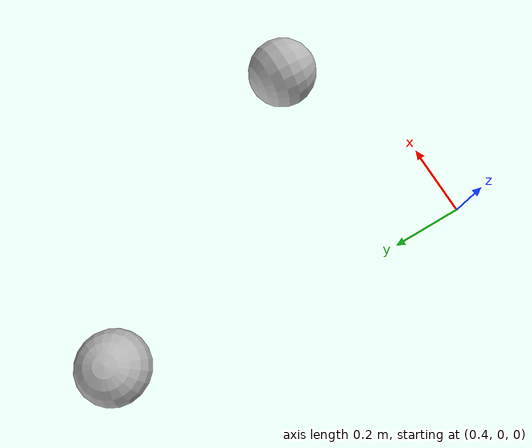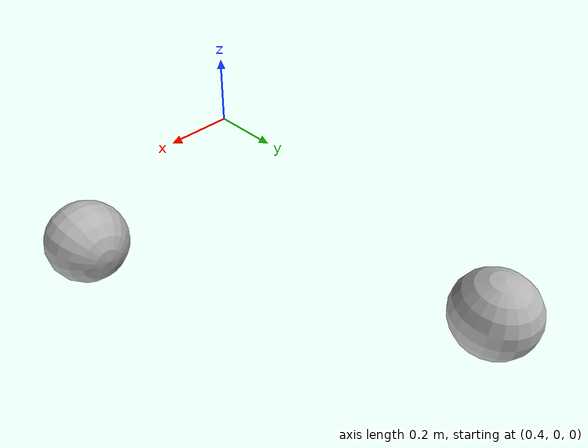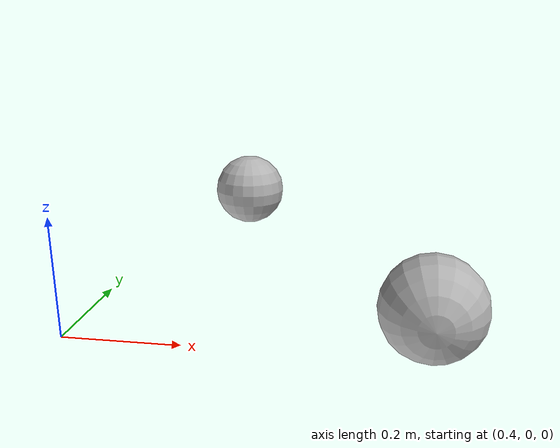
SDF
<?xml version="1.0"?>
<sdf version="1.7">
  <world name="default">
    <model name="M1">
      <pose>0.5 0 0 0 0 0</pose>
      <frame name="imu_frame" attached_to="L1">
        <pose>0.0 0.2 0 1.5707963267948966 0 0</pose>
      </frame>
      <link name="L1">
        <pose>0.5 0 0 0 0 0</pose>
        <inertial>
          <mass>12</mass>
        </inertial>
        <visual name="V1">
          <pose relative_to="imu_frame"/>
          <geometry>
            <sphere>
              <radius>0.1</radius>
            </sphere>
          </geometry>
        </visual>
        <sensor name="imu_sensor" type="imu">
          <pose relative_to="imu_frame"/>
          <always_on>1</always_on>
        </sensor>
      </link>
      <link name="L2">
        <pose>0 1 0 0 0 0</pose>
        <inertial>
          <mass>12</mass>
        </inertial>
        <visual name="V1">
          <geometry>
            <sphere>
              <radius>0.1</radius>
            </sphere>
          </geometry>
        </visual>
      </link>
      <frame name="force_torque_frame" attached_to="L2">
        <pose>1 0 0 0 1.5707963267948966 0</pose>
      </frame>
      <joint name="J1" type="fixed">
        <parent>L1</parent>
        <child>L2</child>
        <sensor name="force_torque_sensor" type="force_torque">
          <pose relative_to="force_torque_frame"/>
        </sensor>
      </joint>
    </model>
  </world>
</sdf>
